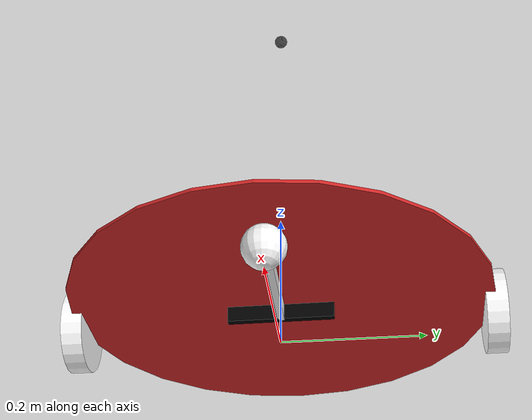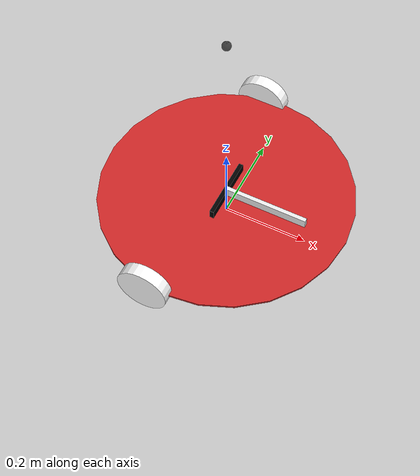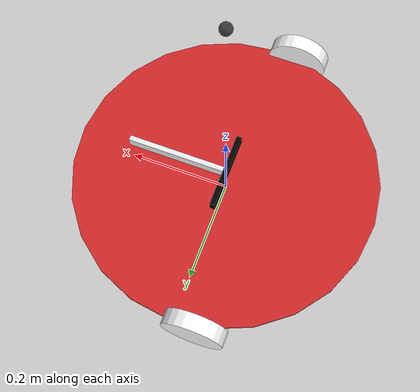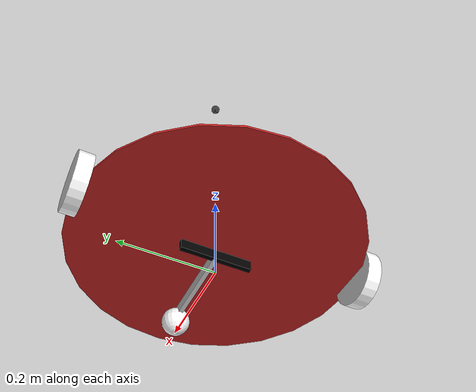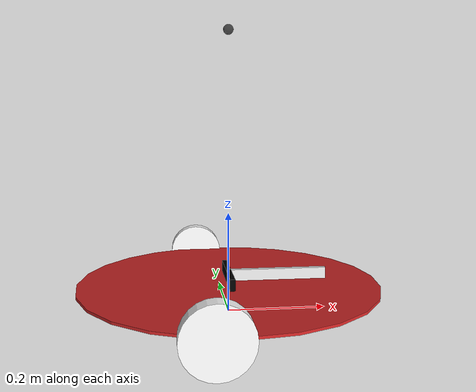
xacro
<?xml version="1.0"?>

<robot name="mrobot" xmlns:xacro="http://www.ros.org/wiki/xacro">

	<xacro:include filename="$(find simulate_robot)/urdf/robot_body.urdf.xacro" />

    <robot_body/>

	<link name="camera0_link">
        <visual>
            <origin xyz=" 0 0 0 " rpy="0 0 0" />
            <geometry>
                <sphere radius="0.01" />
            </geometry>
            <material name="black">
                <color rgba="0 0 0 0.95"/>
            </material>
        </visual>
    </link>

	<joint name="realsense_frame_joint" type="fixed">
		<origin xyz="0 0 0.5" rpy="0 0 0" />
		<parent link="base_link"/>
		<child link="camera0_link"/>
	</joint>

    <link name="camera1_link">
      <visual>
        <origin xyz=" 0 0 0 " rpy="0 0 0" />
        <geometry>
        <sphere radius="0.01" />
        </geometry>
        <material name="black">
        <color rgba="0 0 0 0.95"/>
        </material>
      </visual>
    </link>

    <joint name="camera1_joint" type="fixed">
        <origin xyz="0.0 0 0.5" rpy="0 0 1.0471975511965976"/>
        <parent link="base_link"/>
        <child link="camera1_link"/>
      </joint>

    <link name="camera2_link">
        <visual>
            <origin xyz=" 0 0 0 " rpy="0 0 0" />
            <geometry>
                <sphere radius="0.01" />
            </geometry>
            <material name="black">
                <color rgba="0 0 0 0.95"/>
            </material>
        </visual>
    </link>

    <joint name="camera2_joint" type="fixed">
        <origin xyz="0.0 0 0.5" rpy="0 0 2.0943951023931953"/>
        <parent link="base_link"/>
        <child link="camera2_link"/>
    </joint>

    <link name="camera3_link">
        <visual>
            <origin xyz=" 0 0 0 " rpy="0 0 0" />
            <geometry>
                <sphere radius="0.01" />
            </geometry>
            <material name="black">
                <color rgba="0 0 0 0.95"/>
            </material>
        </visual>
    </link>

    <joint name="camera3_joint" type="fixed">
        <origin xyz="0.0 0 0.5" rpy="0 0 3.141592653589793"/>
        <parent link="base_link"/>
        <child link="camera3_link"/>
    </joint>

    <link name="camera4_link">
        <visual>
            <origin xyz=" 0 0 0 " rpy="0 0 0" />
            <geometry>
                <sphere radius="0.01" />
            </geometry>
            <material name="black">
                <color rgba="0 0 0 0.95"/>
            </material>
        </visual>
    </link>

    <joint name="camera4_joint" type="fixed">
        <origin xyz="0.0 0 0.5" rpy="0 0 -2.0943951023931953"/>
        <parent link="base_link"/>
        <child link="camera4_link"/>
    </joint>

    <link name="camera5_link">
        <visual>
            <origin xyz=" 0 0 0 " rpy="0 0 0" />
            <geometry>
                <sphere radius="0.01" />
            </geometry>
            <material name="black">
                <color rgba="0 0 0 0.95"/>
            </material>
        </visual>
    </link>

    <joint name="camera5_joint" type="fixed">
        <origin xyz="0.0 0 0.5" rpy="0 0 -1.0471975511965976 "/>
        <parent link="base_link"/>
        <child link="camera5_link"/>
    </joint>

    <!-- camera simulator plug-in -->
    <gazebo reference="camera0_link">  <!--加载相机的插件, 下面配置相机参数-->
		<turnGravityOff>false</turnGravityOff>
		<sensor type="depth" name="realsense_depth">
            <update_rate>30.0</update_rate>
            <camera>
                <!-- 75x65 degree FOV for the depth sensor, 相机 水平/俯仰 视场角 -->
                <horizontal_fov>1.5184351666666667</horizontal_fov>
                <vertical_fov>1.0122901111111111</vertical_fov>

                <image>
                    <width>640</width> <!--像素宽度  u-->
                    <height>480</height> <!--像素高度 v-->
                    <!-- TODO: check what format the Realsense hardware delivers and set this to match! -->
                    <format>RGB8</format>
                </image>
                <clip>
                    <!-- give the color sensor a maximum range of 50m so that the simulation renders nicely -->
                    <near>0.01</near> <!--最近拍摄距离-->
                    <far>50.0</far> <!--最远拍摄距离-->
                </clip>
                <!--相机噪声-->
            </camera>
            <plugin name="kinect_controller" filename="libgazebo_ros_openni_kinect.so">
                <baseline>0.2</baseline>
                <alwaysOn>true</alwaysOn>
                <updateRate>30</updateRate>
                <cameraName>camera0</cameraName>
                <imageTopicName>color/image_raw</imageTopicName>
                <cameraInfoTopicName>color/camera_info</cameraInfoTopicName>
                <depthImageTopicName>depth/image_rect_raw</depthImageTopicName>
                <depthImageInfoTopicName>depth/camera_info</depthImageInfoTopicName>
                <pointCloudTopicName>depth/color/points</pointCloudTopicName>
                <frameName>camera0_link</frameName>
                <pointCloudCutoff>0.1</pointCloudCutoff>
                <pointCloudCutoffMax>10.0</pointCloudCutoffMax>
                <distortionK1>0.00000001</distortionK1>
                <distortionK2>0.00000001</distortionK2>
                <distortionK3>0.00000001</distortionK3>
                <distortionT1>0.00000001</distortionT1>
                <distortionT2>0.00000001</distortionT2>
                <CxPrime>0</CxPrime>
                <Cx>0</Cx>
                <Cy>0</Cy>
                <focalLength>0</focalLength>
                <hackBaseline>0</hackBaseline>
            </plugin>
		</sensor>
	</gazebo>

    <gazebo reference="camera1_link">
        <turnGravityOff>false</turnGravityOff>
        <sensor type="depth" name="realsense_depth">
            <update_rate>30.0</update_rate>
            <camera>
                <!-- 75x65 degree FOV for the depth sensor -->
                <horizontal_fov>1.5184351666666667</horizontal_fov>
                <vertical_fov>1.0122901111111111</vertical_fov>

                <image>
                    <width>640</width>
                    <height>480</height>
                    <!-- TODO: check what format the Realsense hardware delivers and set this to match! -->
                    <format>RGB8</format>
                </image>
                <clip>
                    <!-- give the color sensor a maximum range of 50m so that the simulation renders nicely -->
                    <near>0.01</near>
                    <far>50.0</far>
                </clip>
            </camera>
            <plugin name="kinect_controller" filename="libgazebo_ros_openni_kinect.so">
                <baseline>0.2</baseline>
                <alwaysOn>true</alwaysOn>
                <updateRate>30</updateRate>
                <cameraName>camera1</cameraName>
                <imageTopicName>color/image_raw</imageTopicName>
                <cameraInfoTopicName>color/camera_info</cameraInfoTopicName>
                <depthImageTopicName>depth/image_rect_raw</depthImageTopicName>
                <depthImageInfoTopicName>depth/camera_info</depthImageInfoTopicName>
                <pointCloudTopicName>depth/color/points</pointCloudTopicName>
                <frameName>camera1_link</frameName>
                <pointCloudCutoff>0.1</pointCloudCutoff>
                <pointCloudCutoffMax>10.0</pointCloudCutoffMax>
                <distortionK1>0.00000001</distortionK1>
                <distortionK2>0.00000001</distortionK2>
                <distortionK3>0.00000001</distortionK3>
                <distortionT1>0.00000001</distortionT1>
                <distortionT2>0.00000001</distortionT2>
                <CxPrime>0</CxPrime>
                <Cx>0</Cx>
                <Cy>0</Cy>
                <focalLength>0</focalLength>
                <hackBaseline>0</hackBaseline>
            </plugin>
        </sensor>
    </gazebo>

    <gazebo reference="camera2_link">
        <turnGravityOff>false</turnGravityOff>
        <sensor type="depth" name="realsense_depth">
            <update_rate>30.0</update_rate>
            <camera>
                <!-- 75x65 degree FOV for the depth sensor -->
                <horizontal_fov>1.5184351666666667</horizontal_fov>
                <vertical_fov>1.0122901111111111</vertical_fov>

                <image>
                    <width>640</width>
                    <height>480</height>
                    <!-- TODO: check what format the Realsense hardware delivers and set this to match! -->
                    <format>RGB8</format>
                </image>
                <clip>
                    <!-- give the color sensor a maximum range of 50m so that the simulation renders nicely -->
                    <near>0.01</near>
                    <far>50.0</far>
                </clip>
            </camera>
            <plugin name="kinect_controller" filename="libgazebo_ros_openni_kinect.so">
                <baseline>0.2</baseline>
                <alwaysOn>true</alwaysOn>
                <updateRate>30</updateRate>
                <cameraName>camera2</cameraName>
                <imageTopicName>color/image_raw</imageTopicName>
                <cameraInfoTopicName>color/camera_info</cameraInfoTopicName>
                <depthImageTopicName>depth/image_rect_raw</depthImageTopicName>
                <depthImageInfoTopicName>depth/camera_info</depthImageInfoTopicName>
                <pointCloudTopicName>depth/color/points</pointCloudTopicName>
                <frameName>camera2_link</frameName>
                <pointCloudCutoff>0.1</pointCloudCutoff>
                <pointCloudCutoffMax>10.0</pointCloudCutoffMax>
                <distortionK1>0.00000001</distortionK1>
                <distortionK2>0.00000001</distortionK2>
                <distortionK3>0.00000001</distortionK3>
                <distortionT1>0.00000001</distortionT1>
                <distortionT2>0.00000001</distortionT2>
                <CxPrime>0</CxPrime>
                <Cx>0</Cx>
                <Cy>0</Cy>
                <focalLength>0</focalLength>
                <hackBaseline>0</hackBaseline>
            </plugin>
        </sensor>
    </gazebo>

    <gazebo reference="camera3_link">
        <turnGravityOff>false</turnGravityOff>
        <sensor type="depth" name="realsense_depth">
            <update_rate>30.0</update_rate>
            <camera>
                <!-- 75x65 degree FOV for the depth sensor -->
                <horizontal_fov>1.5184351666666667</horizontal_fov>
                <vertical_fov>1.0122901111111111</vertical_fov>

                <image>
                    <width>640</width>
                    <height>480</height>
                    <!-- TODO: check what format the Realsense hardware delivers and set this to match! -->
                    <format>RGB8</format>
                </image>
                <clip>
                    <!-- give the color sensor a maximum range of 50m so that the simulation renders nicely -->
                    <near>0.01</near>
                    <far>50.0</far>
                </clip>
            </camera>
            <plugin name="kinect_controller" filename="libgazebo_ros_openni_kinect.so">
                <baseline>0.2</baseline>
                <alwaysOn>true</alwaysOn>
                <updateRate>30</updateRate>
                <cameraName>camera3</cameraName>
                <imageTopicName>color/image_raw</imageTopicName>
                <cameraInfoTopicName>color/camera_info</cameraInfoTopicName>
                <depthImageTopicName>depth/image_rect_raw</depthImageTopicName>
                <depthImageInfoTopicName>depth/camera_info</depthImageInfoTopicName>
                <pointCloudTopicName>depth/color/points</pointCloudTopicName>
                <frameName>camera3_link</frameName>
                <pointCloudCutoff>0.1</pointCloudCutoff>
                <pointCloudCutoffMax>10.0</pointCloudCutoffMax>
                <distortionK1>0.00000001</distortionK1>
                <distortionK2>0.00000001</distortionK2>
                <distortionK3>0.00000001</distortionK3>
                <distortionT1>0.00000001</distortionT1>
                <distortionT2>0.00000001</distortionT2>
                <CxPrime>0</CxPrime>
                <Cx>0</Cx>
                <Cy>0</Cy>
                <focalLength>0</focalLength>
                <hackBaseline>0</hackBaseline>
            </plugin>
        </sensor>
    </gazebo>

    <gazebo reference="camera4_link">
        <turnGravityOff>false</turnGravityOff>
        <sensor type="depth" name="realsense_depth">
            <update_rate>30.0</update_rate>
            <camera>
                <!-- 75x65 degree FOV for the depth sensor -->
                <horizontal_fov>1.5184351666666667</horizontal_fov>
                <vertical_fov>1.0122901111111111</vertical_fov>

                <image>
                    <width>640</width>
                    <height>480</height>
                    <!-- TODO: check what format the Realsense hardware delivers and set this to match! -->
                    <format>RGB8</format>
                </image>
                <clip>
                    <!-- give the color sensor a maximum range of 50m so that the simulation renders nicely -->
                    <near>0.01</near>
                    <far>50.0</far>
                </clip>
            </camera>
            <plugin name="kinect_controller" filename="libgazebo_ros_openni_kinect.so">
                <baseline>0.2</baseline>
                <alwaysOn>true</alwaysOn>
                <updateRate>30</updateRate>
                <cameraName>camera4</cameraName>
                <imageTopicName>color/image_raw</imageTopicName>
                <cameraInfoTopicName>color/camera_info</cameraInfoTopicName>
                <depthImageTopicName>depth/image_rect_raw</depthImageTopicName>
                <depthImageInfoTopicName>depth/camera_info</depthImageInfoTopicName>
                <pointCloudTopicName>depth/color/points</pointCloudTopicName>
                <frameName>camera4_link</frameName>
                <pointCloudCutoff>0.1</pointCloudCutoff>
                <pointCloudCutoffMax>10.0</pointCloudCutoffMax>
                <distortionK1>0.00000001</distortionK1>
                <distortionK2>0.00000001</distortionK2>
                <distortionK3>0.00000001</distortionK3>
                <distortionT1>0.00000001</distortionT1>
                <distortionT2>0.00000001</distortionT2>
                <CxPrime>0</CxPrime>
                <Cx>0</Cx>
                <Cy>0</Cy>
                <focalLength>0</focalLength>
                <hackBaseline>0</hackBaseline>
            </plugin>
        </sensor>
    </gazebo>

    <gazebo reference="camera5_link">
        <turnGravityOff>false</turnGravityOff>
        <sensor type="depth" name="realsense_depth">
            <update_rate>30.0</update_rate>
            <camera>
                <!-- 75x65 degree FOV for the depth sensor -->
                <horizontal_fov>1.5184351666666667</horizontal_fov>
                <vertical_fov>1.0122901111111111</vertical_fov>

                <image>
                    <width>640</width>
                    <height>480</height>
                    <!-- TODO: check what format the Realsense hardware delivers and set this to match! -->
                    <format>RGB8</format>
                </image>
                <clip>
                    <!-- give the color sensor a maximum range of 50m so that the simulation renders nicely -->
                    <near>0.01</near>
                    <far>50.0</far>
                </clip>
            </camera>
            <plugin name="kinect_controller" filename="libgazebo_ros_openni_kinect.so">
                <baseline>0.2</baseline>
                <alwaysOn>true</alwaysOn>
                <updateRate>30</updateRate>
                <cameraName>camera5</cameraName>
                <imageTopicName>color/image_raw</imageTopicName>
                <cameraInfoTopicName>color/camera_info</cameraInfoTopicName>
                <depthImageTopicName>depth/image_rect_raw</depthImageTopicName>
                <depthImageInfoTopicName>depth/camera_info</depthImageInfoTopicName>
                <pointCloudTopicName>depth/color/points</pointCloudTopicName>
                <frameName>camera5_link</frameName>
                <pointCloudCutoff>0.1</pointCloudCutoff>
                <pointCloudCutoffMax>10.0</pointCloudCutoffMax>
                <distortionK1>0.00000001</distortionK1>
                <distortionK2>0.00000001</distortionK2>
                <distortionK3>0.00000001</distortionK3>
                <distortionT1>0.00000001</distortionT1>
                <distortionT2>0.00000001</distortionT2>
                <CxPrime>0</CxPrime>
                <Cx>0</Cx>
                <Cy>0</Cy>
                <focalLength>0</focalLength>
                <hackBaseline>0</hackBaseline>
            </plugin>
        </sensor>
    </gazebo>

</robot>

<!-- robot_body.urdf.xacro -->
<robot name="robot" xmlns:xacro="http://www.ros.org/wiki/xacro">

    <!-- Defining the colors used in this robot -->
    <material name="Black">
        <color rgba="0 0 0 1"/>
    </material>

    <material name="White">
        <color rgba="1 1 1 1"/>
    </material>

    <material name="Blue">
        <color rgba="0 0 1 1"/>
    </material>

    <material name="Red">
        <color rgba="1 0 0 1"/>
    </material>

    <!-- PROPERTY LIST -->
    <!--All units in m-kg-s-radians unit system -->
    <xacro:property name="M_PI" value="3.1415926535897931" />

    <!-- Main body length, width, height and mass -->
    <xacro:property name="base_mass"        value="0.5" />
    <xacro:property name="base_link_radius" value="0.3"/>
    <xacro:property name="base_link_length" value="0.005"/>

    <xacro:property name="motor_x" value="-0.05"/>

    <!-- Caster radius and mass -->
    <xacro:property name="caster_radius"          value="0.03" />
    <xacro:property name="caster_mass"            value="0.01" />
    <xacro:property name="caster_joint_origin_x"  value="-0.2" />

    <!-- Wheel radius, height and mass -->
    <xacro:property name="wheel_radius" value="0.06" />
    <xacro:property name="wheel_height" value="0.03" />
    <xacro:property name="wheel_mass"   value="0.1" />

    <!-- Macro for inertia matrix -->
    <xacro:macro name="sphere_inertial_matrix" params="m r">
        <inertial>
            <mass value="${m}" />
            <inertia ixx="${2*m*r*r/5}" ixy="0" ixz="0"
                iyy="${2*m*r*r/5}" iyz="0"
                izz="${2*m*r*r/5}" />
        </inertial>
    </xacro:macro>

    <xacro:macro name="cylinder_inertial_matrix" params="m r h">
        <inertial>
            <mass value="${m}" />
            <inertia ixx="${m*(3*r*r+h*h)/12}" ixy = "0" ixz = "0"
                iyy="${m*(3*r*r+h*h)/12}" iyz = "0"
                izz="${m*r*r/2}" />
        </inertial>
    </xacro:macro>

    <xacro:macro name="box_inertial_matrix" params="m w h d">
        <inertial>
            <mass value="${m}" />
            <inertia ixx="${m*(h*h+d*d)/12}" ixy = "0" ixz = "0"
                iyy="${m*(w*w+d*d)/12}" iyz = "0"
                izz="${m*(w*w+h*h)/12}" />
        </inertial>
    </xacro:macro>

    <!-- Macro for wheel joint -->
    <xacro:macro name="wheel" params="lr translateY">
        <!-- lr: left, right -->
        <link name="wheel_${lr}_link">
            <visual>
                <origin xyz="0 0 0" rpy="${M_PI/2} 0  0 " />
                <geometry>
                    <cylinder length="${wheel_height}" radius="${wheel_radius}" />
                </geometry>
                <material name="White" />
            </visual>
            <collision>
                <origin xyz="0 0 0" rpy="${M_PI/2} 0 0 " />
                <geometry>
                    <cylinder length="${wheel_height}" radius="${wheel_radius}" />
                </geometry>
            </collision>
            <cylinder_inertial_matrix  m="${wheel_mass}" r="${wheel_radius}" h="${wheel_height}" />
        </link>

        <gazebo reference="wheel_${lr}_link">
            <material>Gazebo/White</material>
        </gazebo>

        <joint name="base_to_wheel_${lr}_joint" type="continuous">
            <parent link="base_link"/>
            <child link="wheel_${lr}_link"/>
            <origin xyz="${motor_x} ${translateY * base_link_radius} 0" rpy="0 0 0" />
            <axis xyz="0 1 0" rpy="0  0" />
        </joint>

        <!-- Transmission is important to link the joints and the controller -->
        <transmission name="wheel_${lr}_joint_trans">
            <type>transmission_interface/SimpleTransmission</type>
            <joint name="base_to_wheel_${lr}_joint" />
            <actuator name="wheel_${lr}_joint_motor">
                <hardwareInterface>VelocityJointInterface</hardwareInterface>
                <mechanicalReduction>1</mechanicalReduction>
            </actuator>
        </transmission>
    </xacro:macro>

    <!-- Macro for caster joint -->
    <xacro:macro name="caster" params="fb translateX">
        <!-- fb: front, back -->
        <link name="${fb}_caster_link">
            <visual>
                <origin xyz="0 0 0 " rpy="0 0 0" />
                <geometry>
                    <sphere radius="${caster_radius}" />
                </geometry>
                <material name="White" />
            </visual>
            <collision>
                <geometry>
                    <sphere radius="${caster_radius}" />
                </geometry>
                <origin xyz="0 0 0 " rpy="0 0 0" />
            </collision>
            <sphere_inertial_matrix  m="${caster_mass}" r="${caster_radius}" />
        </link>

        <gazebo reference="${fb}_caster_link">
            <material>Gazebo/White</material>
        </gazebo>

        <joint name="base_to_${fb}_caster_joint" type="fixed">
            <parent link="base_link"/>
            <child link="${fb}_caster_link"/>
            <origin xyz="${translateX*caster_joint_origin_x} 0 ${-caster_radius}" rpy="0 0 0"/>
        </joint>
    </xacro:macro>

    <!-- BASE-FOOTPRINT -->
    <!-- base_footprint is a fictitious link(frame) that is on the ground right below base_link origin -->
    <xacro:macro name="robot_body">
        <link name="base_footprint">
            <visual>
                <origin xyz="0 0 0" rpy="0 0 0" />
                <geometry>
                    <box size="0.001 0.001 0.001" />
                </geometry>
            </visual>
        </link>

        <joint name="base_footprint_joint" type="fixed">
            <origin xyz="0 0 ${wheel_radius}" rpy="0 0 0" />
            <parent link="base_footprint"/>
            <child link="base_link" />
        </joint>

        <!-- BASE-LINK -->
        <!--Actual body/chassis of the robot-->
        <link name="base_link">
            <cylinder_inertial_matrix  m="${base_mass}" r="${base_link_radius}" h="${base_link_length}" />
            <visual>
                <origin xyz=" 0 0 0" rpy="0 0 0" />
                <geometry>
                    <cylinder length="${base_link_length}" radius="${base_link_radius}"/>
                </geometry>
                <material name="red" />
            </visual>

            <collision>
                <origin xyz="0 0 0" rpy="0 0 0" />
                <geometry>
                    <cylinder length="${base_link_length}" radius="${base_link_radius}"/>
                </geometry>
            </collision>
        </link>
        <gazebo reference="base_link">
            <material>Gazebo/Red</material>
        </gazebo>

        <!-- Wheel Definitions -->
        <wheel lr="right"  translateY="1" />
        <wheel lr="left"  translateY="-1" />

        <!-- Casters Definitions -->
        <caster fb="front"  translateX="-1" />

        <link name="xMark_link">
          <visual>
             <origin xyz=" 0 0 0 " rpy="0 0 0" />
             <geometry>
                    <box size="0.2 0.01 0.05" />
             </geometry>
             <material name="white" />
          </visual>
        </link>
         <gazebo reference="xMark_link">
            <material>Gazebo/White</material>
        </gazebo>

	   <joint name="xMark" type="fixed">
		   <origin xyz="0.1 0 0.0" rpy="0 0 0" />
		   <parent link="base_link"/>
	  	   <child link="xMark_link"/>
	   </joint>

        <link name="yMark_link">
          <visual>
             <origin xyz=" 0 0 0 " rpy="0 0 0" />
             <geometry>
                    <box size="0.01 0.15 0.05" />
             </geometry>
             <material name="black" />
          </visual>
        </link>
         <gazebo reference="yMark_link">
            <material>Gazebo/Black</material>
        </gazebo>

	   <joint name="yMark" type="fixed">
		   <origin xyz="0.0 0.0 0.0" rpy="0 0 0" />
		   <parent link="base_link"/>
	  	   <child link="yMark_link"/>
	   </joint>

        <!-- controller -->
        <gazebo>
            <plugin name="differential_drive_controller" filename="libgazebo_ros_diff_drive.so">
                <rosDebugLevel>Debug</rosDebugLevel>
                <publishWheelTF>true</publishWheelTF>
                <robotNamespace>/</robotNamespace>
                <publishTf>1</publishTf>
                <publishWheelJointState>true</publishWheelJointState>
                <alwaysOn>true</alwaysOn>
                <updateRate>100.0</updateRate>
                <legacyMode>true</legacyMode>
                <leftJoint>base_to_wheel_left_joint</leftJoint>
                <rightJoint>base_to_wheel_right_joint</rightJoint>
                <wheelSeparation>${base_link_radius*2}</wheelSeparation>
                <wheelDiameter>${2*wheel_radius}</wheelDiameter>
                <broadcastTF>1</broadcastTF>
                <wheelTorque>30</wheelTorque>
                <wheelAcceleration>1.8</wheelAcceleration>
                <commandTopic>cmd_vel</commandTopic>
                <odometryFrame>odom</odometryFrame>
                <odometryTopic>odom</odometryTopic>
                <robotBaseFrame>base_footprint</robotBaseFrame>
            </plugin>
        </gazebo>

    </xacro:macro>
</robot>
